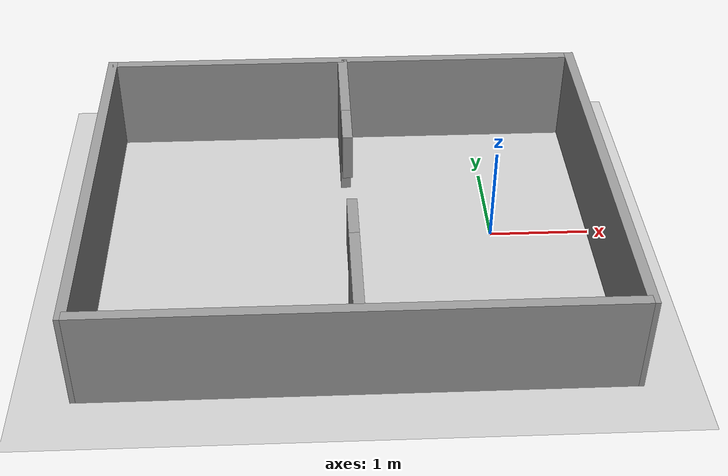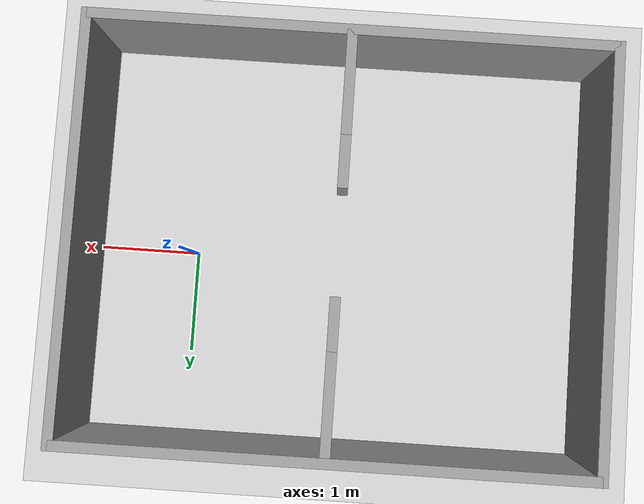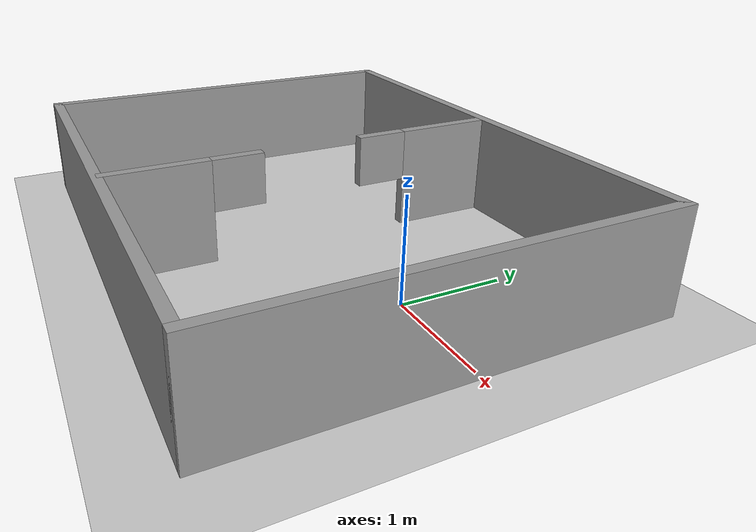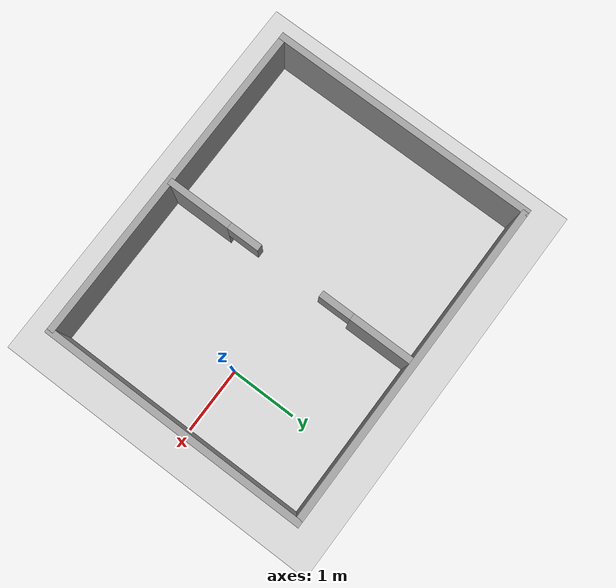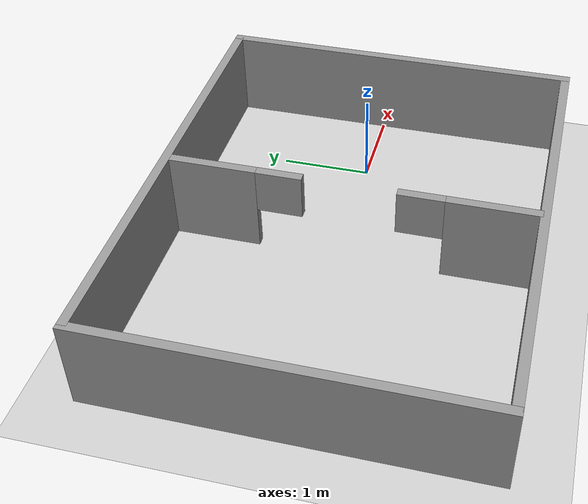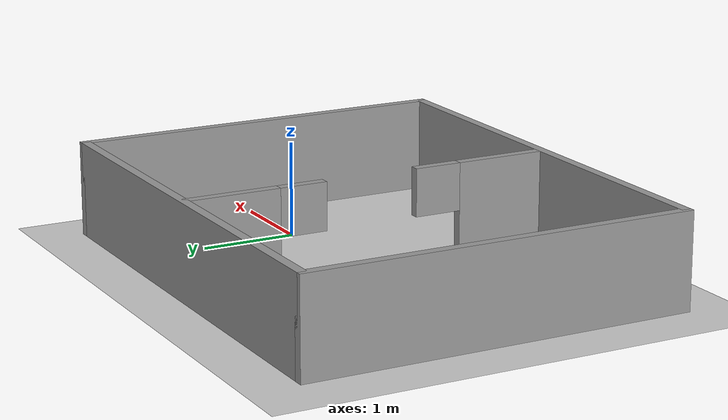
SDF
<sdf version="1.6">
 <world name="default">
  <light name="sun" type="directional">
   <pose>0 0 10 0 -0 0</pose>
   <diffuse>0.8 0.8 0.8 1</diffuse>
   <specular>0.2 0.2 0.2 1</specular>
   <attenuation>
    <range>1000</range>
    <constant>0.9</constant>
    <linear>0.01</linear>
    <quadratic>0.001</quadratic>
   </attenuation>
   <direction>-0.5 0.1 -0.9</direction>
  </light>
  <model name="ground_plane">
   <static>1</static>
   <link name="link">
    <collision name="collision">
     <geometry><plane><normal>0 0 1</normal><size>100 100</size></plane></geometry>
     <surface><friction><ode><mu>100</mu><mu2>50</mu2></ode></friction></surface>
    </collision>
    <visual name="visual">
     <cast_shadows>0</cast_shadows>
     <geometry><plane><normal>0 0 1</normal><size>100 100</size></plane></geometry>
     <material>
      <script><uri>file://media/materials/scripts/gazebo.material</uri><name>Gazebo/Grey</name></script>
     </material>
    </visual>
   </link>
  </model>
  <gravity>0 0 -9.8</gravity>
  <magnetic_field>6e-06 2.3e-05 -4.2e-05</magnetic_field>
  <atmosphere type="adiabatic"/>
  <physics name="default_physics" default="0" type="ode">
   <max_step_size>0.001</max_step_size>
   <real_time_factor>1</real_time_factor>
   <real_time_update_rate>1000</real_time_update_rate>
  </physics>
  <scene><ambient>0.4 0.4 0.4 1</ambient><background>0.7 0.7 0.7 1</background><shadows>1</shadows></scene>
  <spherical_coordinates>
   <surface_model>EARTH_WGS84</surface_model>
   <latitude_deg>0</latitude_deg>
   <longitude_deg>0</longitude_deg>
   <elevation>0</elevation>
   <heading_deg>0</heading_deg>
  </spherical_coordinates>
  <model name="tu_box">
   <link name="link_2">
    <inertial>
     <mass>1</mass>
     <inertia>
      <ixx>0.166667</ixx>
      <ixy>0</ixy>
      <ixz>0</ixz>
      <iyy>0.166667</iyy>
      <iyz>0</iyz>
      <izz>0.166667</izz>
     </inertia>
    </inertial>
    <pose>0 1.5 -0 0 -0 0</pose>
    <visual name="visual">
     <geometry><box><size>0.1 1 1</size></box></geometry>
     <material>
      <lighting>1</lighting>
      <script><uri>file://media/materials/scripts/gazebo.material</uri><name>Gazebo/Grey</name></script>
      <shader type="pixel"><normal_map>__default__</normal_map></shader>
      <ambient>0.3 0.3 0.3 1</ambient>
      <diffuse>0.7 0.7 0.7 1</diffuse>
      <specular>0.01 0.01 0.01 1</specular>
      <emissive>0 0 0 1</emissive>
     </material>
    </visual>
    <collision name="collision">
     <geometry><box><size>0.1 1 1</size></box></geometry>
     <surface>
      <friction>
       <ode><mu>1</mu><mu2>1</mu2><fdir1>0 0 0</fdir1><slip1>0</slip1><slip2>0</slip2></ode>
       <torsional>
        <coefficient>1</coefficient>
        <patch_radius>0</patch_radius>
        <surface_radius>0</surface_radius>
        <use_patch_radius>1</use_patch_radius>
        <ode><slip>0</slip></ode>
       </torsional>
      </friction>
      <bounce><restitution_coefficient>0</restitution_coefficient><threshold>1e+06</threshold></bounce>
      <contact>
       <collide_without_contact>0</collide_without_contact>
       <collide_without_contact_bitmask>1</collide_without_contact_bitmask>
       <collide_bitmask>1</collide_bitmask>
       <ode>
        <soft_cfm>0</soft_cfm>
        <soft_erp>0.2</soft_erp>
        <kp>1e+13</kp>
        <kd>1</kd>
        <max_vel>0.01</max_vel>
        <min_depth>0</min_depth>
       </ode>
       <bullet>
        <split_impulse>1</split_impulse>
        <split_impulse_penetration_threshold>-0.01</split_impulse_penetration_threshold>
        <soft_cfm>0</soft_cfm>
        <soft_erp>0.2</soft_erp>
        <kp>1e+13</kp>
        <kd>1</kd>
       </bullet>
      </contact>
     </surface>
    </collision>
   </link>
   <link name="link_2_clone">
    <inertial>
     <mass>1</mass>
     <inertia>
      <ixx>0.166667</ixx>
      <ixy>0</ixy>
      <ixz>0</ixz>
      <iyy>0.166667</iyy>
      <iyz>0</iyz>
      <izz>0.166667</izz>
     </inertia>
    </inertial>
    <pose>-0 -1.5 -0 0 -0 0</pose>
    <visual name="visual">
     <geometry><box><size>0.1 1 1</size></box></geometry>
     <material>
      <lighting>1</lighting>
      <script><uri>file://media/materials/scripts/gazebo.material</uri><name>Gazebo/Grey</name></script>
      <shader type="pixel"><normal_map>__default__</normal_map></shader>
      <ambient>0.3 0.3 0.3 1</ambient>
      <diffuse>0.7 0.7 0.7 1</diffuse>
      <specular>0.01 0.01 0.01 1</specular>
      <emissive>0 0 0 1</emissive>
     </material>
    </visual>
    <collision name="collision">
     <geometry><box><size>0.1 1 1</size></box></geometry>
     <surface>
      <friction>
       <ode><mu>1</mu><mu2>1</mu2><fdir1>0 0 0</fdir1><slip1>0</slip1><slip2>0</slip2></ode>
       <torsional>
        <coefficient>1</coefficient>
        <patch_radius>0</patch_radius>
        <surface_radius>0</surface_radius>
        <use_patch_radius>1</use_patch_radius>
        <ode><slip>0</slip></ode>
       </torsional>
      </friction>
      <bounce><restitution_coefficient>0</restitution_coefficient><threshold>1e+06</threshold></bounce>
      <contact>
       <collide_without_contact>0</collide_without_contact>
       <collide_without_contact_bitmask>1</collide_without_contact_bitmask>
       <collide_bitmask>1</collide_bitmask>
       <ode>
        <soft_cfm>0</soft_cfm>
        <soft_erp>0.2</soft_erp>
        <kp>1e+13</kp>
        <kd>1</kd>
        <max_vel>0.01</max_vel>
        <min_depth>0</min_depth>
       </ode>
       <bullet>
        <split_impulse>1</split_impulse>
        <split_impulse_penetration_threshold>-0.01</split_impulse_penetration_threshold>
        <soft_cfm>0</soft_cfm>
        <soft_erp>0.2</soft_erp>
        <kp>1e+13</kp>
        <kd>1</kd>
       </bullet>
      </contact>
     </surface>
    </collision>
   </link>
   <link name="link_2_clone_0">
    <inertial>
     <mass>1</mass>
     <inertia>
      <ixx>0.166667</ixx>
      <ixy>0</ixy>
      <ixz>0</ixz>
      <iyy>0.166667</iyy>
      <iyz>0</iyz>
      <izz>0.166667</izz>
     </inertia>
    </inertial>
    <pose>0 0.75 0.25 0 -0 0</pose>
    <visual name="visual">
     <geometry><box><size>0.1 0.5 0.5</size></box></geometry>
     <material>
      <lighting>1</lighting>
      <script><uri>file://media/materials/scripts/gazebo.material</uri><name>Gazebo/Grey</name></script>
      <shader type="pixel"><normal_map>__default__</normal_map></shader>
      <ambient>0.3 0.3 0.3 1</ambient>
      <diffuse>0.7 0.7 0.7 1</diffuse>
      <specular>0.01 0.01 0.01 1</specular>
      <emissive>0 0 0 1</emissive>
     </material>
    </visual>
    <collision name="collision">
     <geometry><box><size>0.1 0.5 0.5</size></box></geometry>
     <surface>
      <friction>
       <ode><mu>1</mu><mu2>1</mu2><fdir1>0 0 0</fdir1><slip1>0</slip1><slip2>0</slip2></ode>
       <torsional>
        <coefficient>1</coefficient>
        <patch_radius>0</patch_radius>
        <surface_radius>0</surface_radius>
        <use_patch_radius>1</use_patch_radius>
        <ode><slip>0</slip></ode>
       </torsional>
      </friction>
      <bounce><restitution_coefficient>0</restitution_coefficient><threshold>1e+06</threshold></bounce>
      <contact>
       <collide_without_contact>0</collide_without_contact>
       <collide_without_contact_bitmask>1</collide_without_contact_bitmask>
       <collide_bitmask>1</collide_bitmask>
       <ode>
        <soft_cfm>0</soft_cfm>
        <soft_erp>0.2</soft_erp>
        <kp>1e+13</kp>
        <kd>1</kd>
        <max_vel>0.01</max_vel>
        <min_depth>0</min_depth>
       </ode>
       <bullet>
        <split_impulse>1</split_impulse>
        <split_impulse_penetration_threshold>-0.01</split_impulse_penetration_threshold>
        <soft_cfm>0</soft_cfm>
        <soft_erp>0.2</soft_erp>
        <kp>1e+13</kp>
        <kd>1</kd>
       </bullet>
      </contact>
     </surface>
    </collision>
   </link>
   <link name="link_2_clone_0_clone">
    <inertial>
     <mass>1</mass>
     <inertia>
      <ixx>0.166667</ixx>
      <ixy>0</ixy>
      <ixz>0</ixz>
      <iyy>0.166667</iyy>
      <iyz>0</iyz>
      <izz>0.166667</izz>
     </inertia>
    </inertial>
    <pose>0 -0.75 0.25 0 -0 0</pose>
    <visual name="visual">
     <geometry><box><size>0.1 0.5 0.5</size></box></geometry>
     <material>
      <lighting>1</lighting>
      <script><uri>file://media/materials/scripts/gazebo.material</uri><name>Gazebo/Grey</name></script>
      <shader type="pixel"><normal_map>__default__</normal_map></shader>
      <ambient>0.3 0.3 0.3 1</ambient>
      <diffuse>0.7 0.7 0.7 1</diffuse>
      <specular>0.01 0.01 0.01 1</specular>
      <emissive>0 0 0 1</emissive>
     </material>
    </visual>
    <collision name="collision">
     <geometry><box><size>0.1 0.5 0.5</size></box></geometry>
     <surface>
      <friction>
       <ode><mu>1</mu><mu2>1</mu2><fdir1>0 0 0</fdir1><slip1>0</slip1><slip2>0</slip2></ode>
       <torsional>
        <coefficient>1</coefficient>
        <patch_radius>0</patch_radius>
        <surface_radius>0</surface_radius>
        <use_patch_radius>1</use_patch_radius>
        <ode><slip>0</slip></ode>
       </torsional>
      </friction>
      <bounce><restitution_coefficient>0</restitution_coefficient><threshold>1e+06</threshold></bounce>
      <contact>
       <collide_without_contact>0</collide_without_contact>
       <collide_without_contact_bitmask>1</collide_without_contact_bitmask>
       <collide_bitmask>1</collide_bitmask>
       <ode>
        <soft_cfm>0</soft_cfm>
        <soft_erp>0.2</soft_erp>
        <kp>1e+13</kp>
        <kd>1</kd>
        <max_vel>0.01</max_vel>
        <min_depth>0</min_depth>
       </ode>
       <bullet>
        <split_impulse>1</split_impulse>
        <split_impulse_penetration_threshold>-0.01</split_impulse_penetration_threshold>
        <soft_cfm>0</soft_cfm>
        <soft_erp>0.2</soft_erp>
        <kp>1e+13</kp>
        <kd>1</kd>
       </bullet>
      </contact>
     </surface>
    </collision>
   </link>
   <link name="link_clone">
    <inertial>
     <mass>1</mass>
     <inertia>
      <ixx>0.166667</ixx>
      <ixy>0</ixy>
      <ixz>0</ixz>
      <iyy>0.166667</iyy>
      <iyz>0</iyz>
      <izz>0.166667</izz>
     </inertia>
    </inertial>
    <pose>-0 -2 -0 0 -0 0</pose>
    <visual name="visual">
     <geometry><box><size>5 0.1 1</size></box></geometry>
     <material>
      <script><name>Gazebo/Grey</name><uri>file://media/materials/scripts/gazebo.material</uri></script>
      <shader type="pixel"><normal_map>__default__</normal_map></shader>
      <ambient>0.3 0.3 0.3 1</ambient>
      <diffuse>0.7 0.7 0.7 1</diffuse>
      <specular>0.01 0.01 0.01 1</specular>
      <emissive>0 0 0 1</emissive>
     </material>
    </visual>
    <collision name="collision">
     <geometry><box><size>5 0.1 1</size></box></geometry>
     <surface>
      <friction>
       <ode><mu>1</mu><mu2>1</mu2><fdir1>0 0 0</fdir1><slip1>0</slip1><slip2>0</slip2></ode>
       <torsional>
        <coefficient>1</coefficient>
        <patch_radius>0</patch_radius>
        <surface_radius>0</surface_radius>
        <use_patch_radius>1</use_patch_radius>
        <ode><slip>0</slip></ode>
       </torsional>
      </friction>
      <bounce><restitution_coefficient>0</restitution_coefficient><threshold>1e+06</threshold></bounce>
      <contact>
       <collide_without_contact>0</collide_without_contact>
       <collide_without_contact_bitmask>1</collide_without_contact_bitmask>
       <collide_bitmask>1</collide_bitmask>
       <ode>
        <soft_cfm>0</soft_cfm>
        <soft_erp>0.2</soft_erp>
        <kp>1e+13</kp>
        <kd>1</kd>
        <max_vel>0.01</max_vel>
        <min_depth>0</min_depth>
       </ode>
       <bullet>
        <split_impulse>1</split_impulse>
        <split_impulse_penetration_threshold>-0.01</split_impulse_penetration_threshold>
        <soft_cfm>0</soft_cfm>
        <soft_erp>0.2</soft_erp>
        <kp>1e+13</kp>
        <kd>1</kd>
       </bullet>
      </contact>
     </surface>
    </collision>
   </link>
   <link name="link_clone_clone">
    <inertial>
     <mass>1</mass>
     <inertia>
      <ixx>0.166667</ixx>
      <ixy>0</ixy>
      <ixz>0</ixz>
      <iyy>0.166667</iyy>
      <iyz>0</iyz>
      <izz>0.166667</izz>
     </inertia>
    </inertial>
    <pose>0 2 -0 0 -0 0</pose>
    <visual name="visual">
     <geometry><box><size>5 0.1 1</size></box></geometry>
     <material>
      <script><name>Gazebo/Grey</name><uri>file://media/materials/scripts/gazebo.material</uri></script>
      <shader type="pixel"><normal_map>__default__</normal_map></shader>
      <ambient>0.3 0.3 0.3 1</ambient>
      <diffuse>0.7 0.7 0.7 1</diffuse>
      <specular>0.01 0.01 0.01 1</specular>
      <emissive>0 0 0 1</emissive>
     </material>
    </visual>
    <collision name="collision">
     <geometry><box><size>5 0.1 1</size></box></geometry>
     <surface>
      <friction>
       <ode><mu>1</mu><mu2>1</mu2><fdir1>0 0 0</fdir1><slip1>0</slip1><slip2>0</slip2></ode>
       <torsional>
        <coefficient>1</coefficient>
        <patch_radius>0</patch_radius>
        <surface_radius>0</surface_radius>
        <use_patch_radius>1</use_patch_radius>
        <ode><slip>0</slip></ode>
       </torsional>
      </friction>
      <bounce><restitution_coefficient>0</restitution_coefficient><threshold>1e+06</threshold></bounce>
      <contact>
       <collide_without_contact>0</collide_without_contact>
       <collide_without_contact_bitmask>1</collide_without_contact_bitmask>
       <collide_bitmask>1</collide_bitmask>
       <ode>
        <soft_cfm>0</soft_cfm>
        <soft_erp>0.2</soft_erp>
        <kp>1e+13</kp>
        <kd>1</kd>
        <max_vel>0.01</max_vel>
        <min_depth>0</min_depth>
       </ode>
       <bullet>
        <split_impulse>1</split_impulse>
        <split_impulse_penetration_threshold>-0.01</split_impulse_penetration_threshold>
        <soft_cfm>0</soft_cfm>
        <soft_erp>0.2</soft_erp>
        <kp>1e+13</kp>
        <kd>1</kd>
       </bullet>
      </contact>
     </surface>
    </collision>
   </link>
   <link name="link_clone_clone_clone">
    <inertial>
     <mass>1</mass>
     <inertia>
      <ixx>0.166667</ixx>
      <ixy>0</ixy>
      <ixz>0</ixz>
      <iyy>0.166667</iyy>
      <iyz>0</iyz>
      <izz>0.166667</izz>
     </inertia>
    </inertial>
    <pose>2.5 -0 -0 0 -0 0</pose>
    <visual name="visual">
     <geometry><box><size>0.1 4.1 1</size></box></geometry>
     <material>
      <script><name>Gazebo/Grey</name><uri>file://media/materials/scripts/gazebo.material</uri></script>
      <shader type="pixel"><normal_map>__default__</normal_map></shader>
      <ambient>0.3 0.3 0.3 1</ambient>
      <diffuse>0.7 0.7 0.7 1</diffuse>
      <specular>0.01 0.01 0.01 1</specular>
      <emissive>0 0 0 1</emissive>
     </material>
    </visual>
    <collision name="collision">
     <geometry><box><size>0.1 4.1 1</size></box></geometry>
     <surface>
      <friction>
       <ode><mu>1</mu><mu2>1</mu2><fdir1>0 0 0</fdir1><slip1>0</slip1><slip2>0</slip2></ode>
       <torsional>
        <coefficient>1</coefficient>
        <patch_radius>0</patch_radius>
        <surface_radius>0</surface_radius>
        <use_patch_radius>1</use_patch_radius>
        <ode><slip>0</slip></ode>
       </torsional>
      </friction>
      <bounce><restitution_coefficient>0</restitution_coefficient><threshold>1e+06</threshold></bounce>
      <contact>
       <collide_without_contact>0</collide_without_contact>
       <collide_without_contact_bitmask>1</collide_without_contact_bitmask>
       <collide_bitmask>1</collide_bitmask>
       <ode>
        <soft_cfm>0</soft_cfm>
        <soft_erp>0.2</soft_erp>
        <kp>1e+13</kp>
        <kd>1</kd>
        <max_vel>0.01</max_vel>
        <min_depth>0</min_depth>
       </ode>
       <bullet>
        <split_impulse>1</split_impulse>
        <split_impulse_penetration_threshold>-0.01</split_impulse_penetration_threshold>
        <soft_cfm>0</soft_cfm>
        <soft_erp>0.2</soft_erp>
        <kp>1e+13</kp>
        <kd>1</kd>
       </bullet>
      </contact>
     </surface>
    </collision>
   </link>
   <link name="link_clone_clone_clone_clone">
    <inertial>
     <mass>1</mass>
     <inertia>
      <ixx>0.166667</ixx>
      <ixy>0</ixy>
      <ixz>0</ixz>
      <iyy>0.166667</iyy>
      <iyz>0</iyz>
      <izz>0.166667</izz>
     </inertia>
    </inertial>
    <pose>-2.5 0 0 0 -0 0</pose>
    <visual name="visual">
     <geometry><box><size>0.1 4.1 1</size></box></geometry>
     <material>
      <script><name>Gazebo/Grey</name><uri>file://media/materials/scripts/gazebo.material</uri></script>
      <shader type="pixel"><normal_map>__default__</normal_map></shader>
      <ambient>0.3 0.3 0.3 1</ambient>
      <diffuse>0.7 0.7 0.7 1</diffuse>
      <specular>0.01 0.01 0.01 1</specular>
      <emissive>0 0 0 1</emissive>
     </material>
    </visual>
    <collision name="collision">
     <geometry><box><size>0.1 4.1 1</size></box></geometry>
     <surface>
      <friction>
       <ode><mu>1</mu><mu2>1</mu2><fdir1>0 0 0</fdir1><slip1>0</slip1><slip2>0</slip2></ode>
       <torsional>
        <coefficient>1</coefficient>
        <patch_radius>0</patch_radius>
        <surface_radius>0</surface_radius>
        <use_patch_radius>1</use_patch_radius>
        <ode><slip>0</slip></ode>
       </torsional>
      </friction>
      <bounce><restitution_coefficient>0</restitution_coefficient><threshold>1e+06</threshold></bounce>
      <contact>
       <collide_without_contact>0</collide_without_contact>
       <collide_without_contact_bitmask>1</collide_without_contact_bitmask>
       <collide_bitmask>1</collide_bitmask>
       <ode>
        <soft_cfm>0</soft_cfm>
        <soft_erp>0.2</soft_erp>
        <kp>1e+13</kp>
        <kd>1</kd>
        <max_vel>0.01</max_vel>
        <min_depth>0</min_depth>
       </ode>
       <bullet>
        <split_impulse>1</split_impulse>
        <split_impulse_penetration_threshold>-0.01</split_impulse_penetration_threshold>
        <soft_cfm>0</soft_cfm>
        <soft_erp>0.2</soft_erp>
        <kp>1e+13</kp>
        <kd>1</kd>
       </bullet>
      </contact>
     </surface>
    </collision>
   </link>
   <static>0</static>
   <pose>-1.45888 -0.140638 0.5 0 -0 0</pose>
  </model>
 </world>
</sdf>
